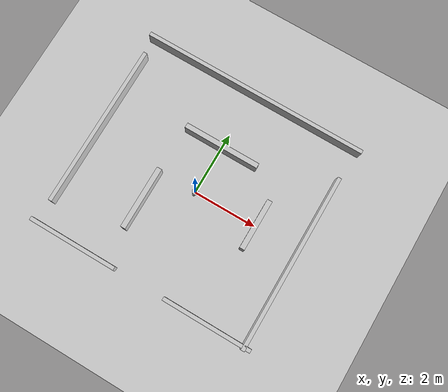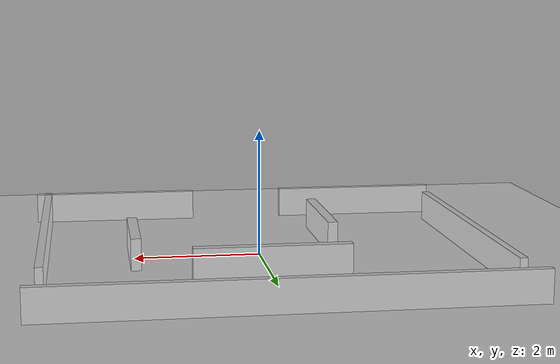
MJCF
<mujoco model="myrobot_rgbd">
  <compiler angle="radian" coordinate="local"/>
  <option timestep="0.005" gravity="0 0 -9.81" integrator="RK4"/>
  <default><geom friction="1.0 0.01 0.001" contype="0" conaffinity="0" rgba="0.8 0.8 0.8 1"/><joint damping="0.1"/></default>
  <asset>
    <material name="yellow" rgba="1 0.55 0 1"/><material name="black" rgba="0.02 0.02 0.02 1"/>
    <material name="gray" rgba="0.55 0.55 0.55 1"/><material name="red" rgba="0.8 0.1 0.1 1"/>
    <material name="blue" rgba="0.1 0.25 0.85 1"/><material name="green" rgba="0.1 0.55 0.25 1"/>
    <material name="orange" rgba="0.9 0.35 0.05 1"/>
  </asset>
  <worldbody>
    <light pos="0 0 3" dir="0 0 -1" diffuse="0.8 0.8 0.8"/>
    <geom name="floor" type="plane" size="8 8 0.1" material="gray" contype="1" conaffinity="1"/>
    <body name="base" pos="0 0 0.08">
      <freejoint name="base_free_joint"/><geom name="base_geom" type="cylinder" size="0.10 0.035" material="yellow" mass="1.0"/>
      <site name="laser_site" pos="0.07 0 0.085" size="0.01" rgba="0 0 1 1"/>
      <site name="imu_site" pos="0 0 0.045" size="0.01" rgba="0 1 0 1"/>
      <camera name="camera" pos="0.12 0 0.02" xyaxes="0 -1 0 0 0 1" fovy="46.826448"/>
      <body name="left_wheel" pos="0 0.1125 -0.04" euler="1.57079632679 0 0"><joint name="left_wheel_joint" type="hinge" axis="0 0 1"/><geom name="left_wheel_geom" type="cylinder" size="0.04 0.0125" material="black" mass="0.2"/></body>
      <body name="right_wheel" pos="0 -0.1125 -0.04" euler="1.57079632679 0 0"><joint name="right_wheel_joint" type="hinge" axis="0 0 1"/><geom name="right_wheel_geom" type="cylinder" size="0.04 0.0125" material="black" mass="0.2"/></body>
    </body>
    <geom name="box_front" type="box" pos="2 0 .25" size=".08 .8 .25" material="red" contype="1" conaffinity="1"/>
    <geom name="box_left" type="box" pos="0 1.5 .25" size="1.2 .08 .25" material="red" contype="1" conaffinity="1"/>
    <geom name="box_right" type="box" pos="-1.2 -1 .25" size=".08 1 .25" material="red" contype="1" conaffinity="1"/>
    <geom name="wall_north" type="box" pos="0 3.4 .25" size="3.6 .06 .25" material="blue" contype="1" conaffinity="1"/>
    <geom name="wall_south_left" type="box" pos="-2.2 -3.1 .25" size="1.4 .06 .25" material="blue" contype="1" conaffinity="1"/>
    <geom name="wall_south_right" type="box" pos="2.2 -3.1 .25" size="1.4 .06 .25" material="blue" contype="1" conaffinity="1"/>
    <geom name="wall_west" type="box" pos="-3.4 .2 .25" size=".06 2.6 .25" material="blue" contype="1" conaffinity="1"/>
    <geom name="wall_east" type="box" pos="3.4 -.4 .25" size=".06 2.8 .25" material="blue" contype="1" conaffinity="1"/>
  </worldbody>
  <actuator><velocity name="left_wheel_velocity" joint="left_wheel_joint" kv="10" ctrlrange="-30 30"/><velocity name="right_wheel_velocity" joint="right_wheel_joint" kv="10" ctrlrange="-30 30"/></actuator>
  <sensor><framequat name="imu_quat" objtype="site" objname="imu_site"/><gyro name="imu_gyro" site="imu_site"/><accelerometer name="imu_accel" site="imu_site"/></sensor>
</mujoco>
